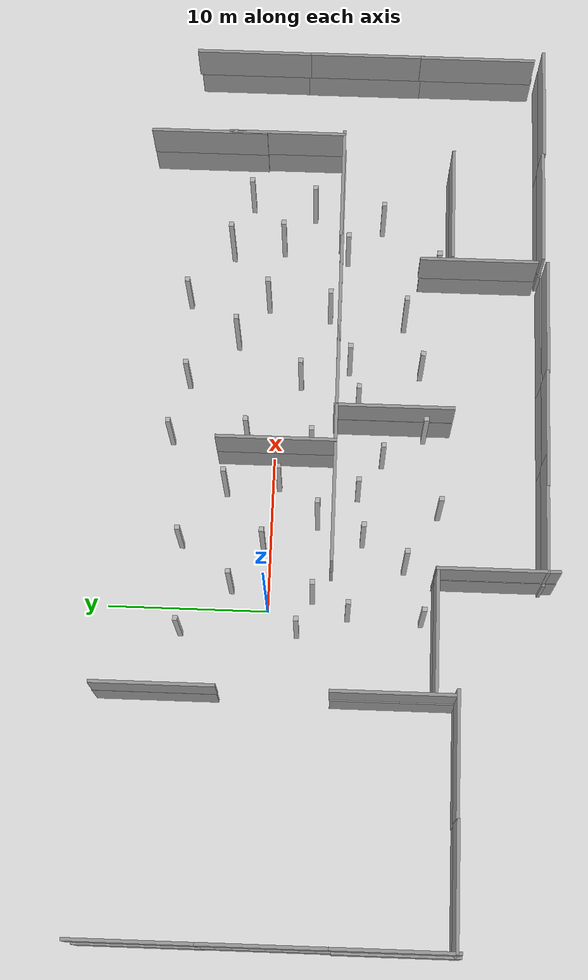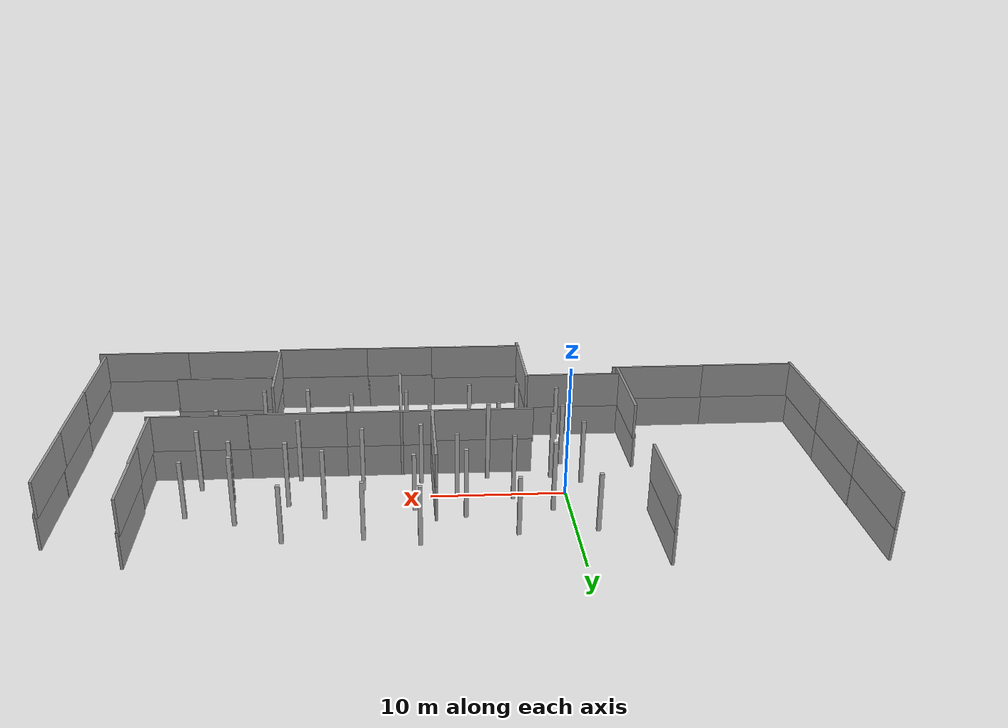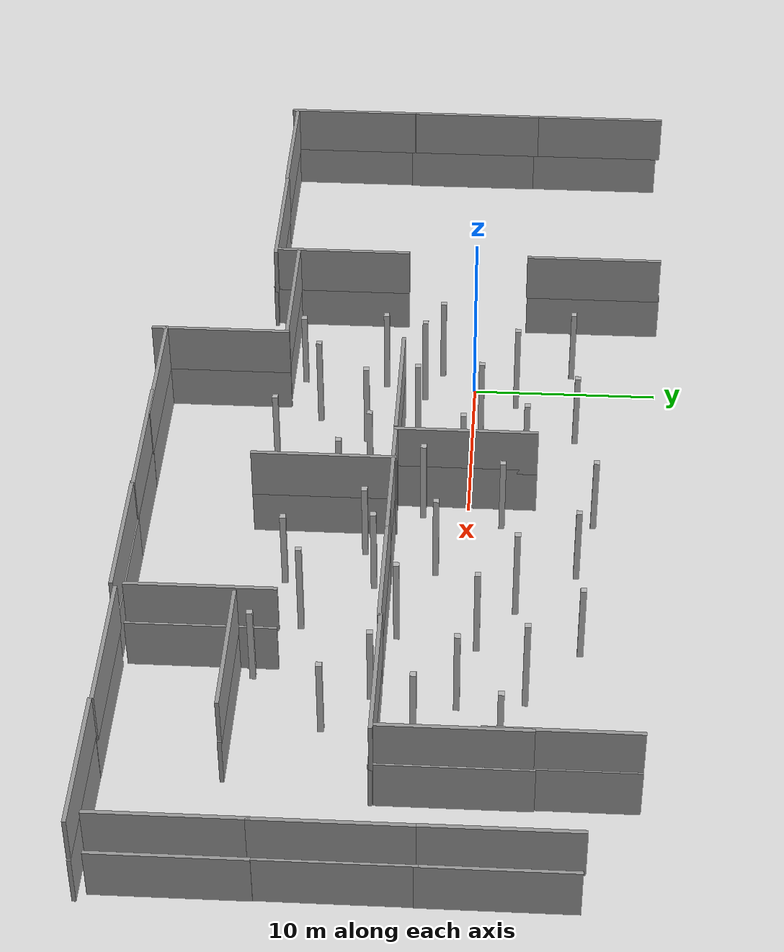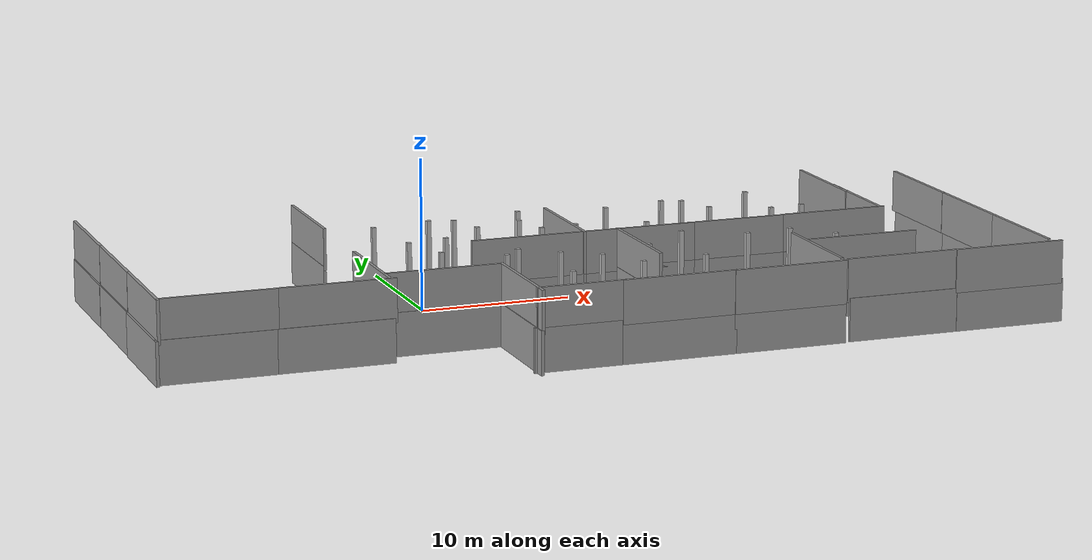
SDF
<sdf version="1.6">
 <world name="world">
  <model name="ground_plane">
   <static>1</static>
   <link name="link">
    <collision name="collision">
     <geometry><plane><normal>0 0 1</normal><size>100 100</size></plane></geometry>
     <surface><friction><ode><mu>100</mu><mu2>50</mu2></ode></friction></surface>
    </collision>
    <velocity_decay><linear>0</linear><angular>0</angular></velocity_decay>
   </link>
  </model>
  <model name="pillars">
   <pose>-3.82158 -2.82314 0 0 -0 0</pose>
   <static>1</static>
   <link name="body">
    <visual name="visual">
     <pose>0 0 -0.001 0 -0 0</pose>
     <geometry><mesh><uri>model://pillars/pillars4.dae</uri><scale>1 1 1</scale></mesh></geometry>
    </visual>
    <collision name="pillars">
     <pose>0 0 -0.001 0 -0 0</pose>
     <geometry><mesh><uri>model://pillars/pillars4.dae</uri><scale>1 1 1</scale></mesh></geometry>
    </collision>
    <velocity_decay><linear>0</linear><angular>0</angular></velocity_decay>
   </link>
  </model>
  <model name="grey_wall">
   <static>1</static>
   <link name="link">
    <pose>0 0 1.4 0 -0 0</pose>
    <collision name="collision"><geometry><box><size>7.5 0.2 2.8</size></box></geometry></collision>
    <visual name="visual">
     <cast_shadows>0</cast_shadows>
     <geometry><box><size>7.5 0.2 2.8</size></box></geometry>
     <material>
      <script>
       <uri>model://grey_wall/materials/scripts</uri>
       <uri>model://grey_wall/materials/textures</uri>
       <name>vrc/grey_wall</name>
      </script>
     </material>
    </visual>
   </link>
   <pose>13.5722 -3.83891 0 0 -0 0</pose>
  </model>
  <model name="grey_wall_clone">
   <static>1</static>
   <link name="link">
    <pose>0 0 1.4 0 -0 0</pose>
    <collision name="collision"><geometry><box><size>7.5 0.2 2.8</size></box></geometry></collision>
    <visual name="visual">
     <cast_shadows>0</cast_shadows>
     <geometry><box><size>7.5 0.2 2.8</size></box></geometry>
     <material>
      <script>
       <uri>model://grey_wall/materials/scripts</uri>
       <uri>model://grey_wall/materials/textures</uri>
       <name>vrc/grey_wall</name>
      </script>
     </material>
    </visual>
   </link>
   <pose>13.5722 -3.83891 2.5 0 -0 0</pose>
  </model>
  <model name="grey_wall_clone_clone">
   <static>1</static>
   <link name="link">
    <pose>0 0 1.4 0 -0 0</pose>
    <collision name="collision"><geometry><box><size>7.5 0.2 2.8</size></box></geometry></collision>
    <visual name="visual">
     <cast_shadows>0</cast_shadows>
     <geometry><box><size>7.5 0.2 2.8</size></box></geometry>
     <material>
      <script>
       <uri>model://grey_wall/materials/scripts</uri>
       <uri>model://grey_wall/materials/textures</uri>
       <name>vrc/grey_wall</name>
      </script>
     </material>
    </visual>
   </link>
   <pose>9.726 -0.192574 2.5 0 -0 1.57</pose>
  </model>
  <model name="grey_wall_clone_clone_clone">
   <static>1</static>
   <link name="link">
    <pose>0 0 1.4 0 -0 0</pose>
    <collision name="collision"><geometry><box><size>7.5 0.2 2.8</size></box></geometry></collision>
    <visual name="visual">
     <cast_shadows>0</cast_shadows>
     <geometry><box><size>7.5 0.2 2.8</size></box></geometry>
     <material>
      <script>
       <uri>model://grey_wall/materials/scripts</uri>
       <uri>model://grey_wall/materials/textures</uri>
       <name>vrc/grey_wall</name>
      </script>
     </material>
    </visual>
   </link>
   <pose>9.726 -0.192574 0 0 -0 1.57</pose>
  </model>
  <model name="grey_wall_clone_clone_clone_clone_clone">
   <static>1</static>
   <link name="link">
    <pose>0 0 1.4 0 -0 0</pose>
    <collision name="collision"><geometry><box><size>7.5 0.2 2.8</size></box></geometry></collision>
    <visual name="visual">
     <cast_shadows>0</cast_shadows>
     <geometry><box><size>7.5 0.2 2.8</size></box></geometry>
     <material>
      <script>
       <uri>model://grey_wall/materials/scripts</uri>
       <uri>model://grey_wall/materials/textures</uri>
       <name>vrc/grey_wall</name>
      </script>
     </material>
    </visual>
   </link>
   <pose>-5.6752 6.4961 0 0 -0 1.57</pose>
  </model>
  <model name="grey_wall_clone_clone_clone_0_clone">
   <static>1</static>
   <link name="link">
    <pose>0 0 1.4 0 -0 0</pose>
    <collision name="collision"><geometry><box><size>7.5 0.2 2.8</size></box></geometry></collision>
    <visual name="visual">
     <cast_shadows>0</cast_shadows>
     <geometry><box><size>7.5 0.2 2.8</size></box></geometry>
     <material>
      <script>
       <uri>model://grey_wall/materials/scripts</uri>
       <uri>model://grey_wall/materials/textures</uri>
       <name>vrc/grey_wall</name>
      </script>
     </material>
    </visual>
   </link>
   <pose>-5.66781 6.45311 2.5 0 -0 1.57</pose>
  </model>
  <model name="grey_wall_clone_0_clone_clone">
   <static>1</static>
   <link name="link">
    <pose>0 0 1.4 0 -0 0</pose>
    <collision name="collision"><geometry><box><size>7.5 0.2 2.8</size></box></geometry></collision>
    <visual name="visual">
     <cast_shadows>0</cast_shadows>
     <geometry><box><size>7.5 0.2 2.8</size></box></geometry>
     <material>
      <script>
       <uri>model://grey_wall/materials/scripts</uri>
       <uri>model://grey_wall/materials/textures</uri>
       <name>vrc/grey_wall</name>
      </script>
     </material>
    </visual>
   </link>
   <pose>5.8738 -3.84512 0 0 -0 0</pose>
  </model>
  <model name="grey_wall_clone_clone_1">
   <static>1</static>
   <link name="link">
    <pose>0 0 1.4 0 -0 0</pose>
    <collision name="collision"><geometry><box><size>7.5 0.2 2.8</size></box></geometry></collision>
    <visual name="visual">
     <cast_shadows>0</cast_shadows>
     <geometry><box><size>7.5 0.2 2.8</size></box></geometry>
     <material>
      <script>
       <uri>model://grey_wall/materials/scripts</uri>
       <uri>model://grey_wall/materials/textures</uri>
       <name>vrc/grey_wall</name>
      </script>
     </material>
    </visual>
   </link>
   <pose>5.81156 -3.84789 2.5 0 -0 0</pose>
  </model>
  <model name="grey_wall_clone_0_clone_clone_clone">
   <static>1</static>
   <link name="link">
    <pose>0 0 1.4 0 -0 0</pose>
    <collision name="collision"><geometry><box><size>7.5 0.2 2.8</size></box></geometry></collision>
    <visual name="visual">
     <cast_shadows>0</cast_shadows>
     <geometry><box><size>7.5 0.2 2.8</size></box></geometry>
     <material>
      <script>
       <uri>model://grey_wall/materials/scripts</uri>
       <uri>model://grey_wall/materials/textures</uri>
       <name>vrc/grey_wall</name>
      </script>
     </material>
    </visual>
   </link>
   <pose>-1.88628 -10.2551 0 0 -0 0</pose>
  </model>
  <model name="grey_wall_clone_clone_1_clone">
   <static>1</static>
   <link name="link">
    <pose>0 0 1.4 0 -0 0</pose>
    <collision name="collision"><geometry><box><size>7.5 0.2 2.8</size></box></geometry></collision>
    <visual name="visual">
     <cast_shadows>0</cast_shadows>
     <geometry><box><size>7.5 0.2 2.8</size></box></geometry>
     <material>
      <script>
       <uri>model://grey_wall/materials/scripts</uri>
       <uri>model://grey_wall/materials/textures</uri>
       <name>vrc/grey_wall</name>
      </script>
     </material>
    </visual>
   </link>
   <pose>-1.99118 -10.2312 2.5 0 -0 0</pose>
  </model>
  <model name="grey_wall_clone_clone_clone_clone_clone_0_clone_0">
   <static>1</static>
   <link name="link">
    <pose>0 0 1.4 0 -0 0</pose>
    <collision name="collision"><geometry><box><size>7.5 0.2 2.8</size></box></geometry></collision>
    <visual name="visual">
     <cast_shadows>0</cast_shadows>
     <geometry><box><size>7.5 0.2 2.8</size></box></geometry>
     <material>
      <script>
       <uri>model://grey_wall/materials/scripts</uri>
       <uri>model://grey_wall/materials/textures</uri>
       <name>vrc/grey_wall</name>
      </script>
     </material>
    </visual>
   </link>
   <pose>12.0107 -7.4078 0 0 -0 1.57</pose>
  </model>
  <model name="grey_wall_clone_clone_clone_0_clone_0_clone_0">
   <static>1</static>
   <link name="link">
    <pose>0 0 1.4 0 -0 0</pose>
    <collision name="collision"><geometry><box><size>7.5 0.2 2.8</size></box></geometry></collision>
    <visual name="visual">
     <cast_shadows>0</cast_shadows>
     <geometry><box><size>7.5 0.2 2.8</size></box></geometry>
     <material>
      <script>
       <uri>model://grey_wall/materials/scripts</uri>
       <uri>model://grey_wall/materials/textures</uri>
       <name>vrc/grey_wall</name>
      </script>
     </material>
    </visual>
   </link>
   <pose>12.0233 -7.4059 2.5 0 -0 1.57</pose>
  </model>
  <model name="grey_wall_clone_0_clone_clone_clone_0_clone">
   <static>1</static>
   <link name="link">
    <pose>0 0 1.4 0 -0 0</pose>
    <collision name="collision"><geometry><box><size>7.5 0.2 2.8</size></box></geometry></collision>
    <visual name="visual">
     <cast_shadows>0</cast_shadows>
     <geometry><box><size>7.5 0.2 2.8</size></box></geometry>
     <material>
      <script>
       <uri>model://grey_wall/materials/scripts</uri>
       <uri>model://grey_wall/materials/textures</uri>
       <name>vrc/grey_wall</name>
      </script>
     </material>
    </visual>
   </link>
   <pose>10.9652 -16.8254 0 0 -0 0</pose>
  </model>
  <model name="grey_wall_clone_clone_1_clone_clone_clone">
   <static>1</static>
   <link name="link">
    <pose>0 0 1.4 0 -0 0</pose>
    <collision name="collision"><geometry><box><size>7.5 0.2 2.8</size></box></geometry></collision>
    <visual name="visual">
     <cast_shadows>0</cast_shadows>
     <geometry><box><size>7.5 0.2 2.8</size></box></geometry>
     <material>
      <script>
       <uri>model://grey_wall/materials/scripts</uri>
       <uri>model://grey_wall/materials/textures</uri>
       <name>vrc/grey_wall</name>
      </script>
     </material>
    </visual>
   </link>
   <pose>10.9906 -16.8458 2.5 0 -0 0</pose>
  </model>
  <model name="grey_wall_clone_0_clone_clone_clone_0_clone_clone">
   <static>1</static>
   <link name="link">
    <pose>0 0 1.4 0 -0 0</pose>
    <collision name="collision"><geometry><box><size>7.5 0.2 2.8</size></box></geometry></collision>
    <visual name="visual">
     <cast_shadows>0</cast_shadows>
     <geometry><box><size>7.5 0.2 2.8</size></box></geometry>
     <material>
      <script>
       <uri>model://grey_wall/materials/scripts</uri>
       <uri>model://grey_wall/materials/textures</uri>
       <name>vrc/grey_wall</name>
      </script>
     </material>
    </visual>
   </link>
   <pose>18.339 -16.8254 0 0 -0 0</pose>
  </model>
  <model name="grey_wall_clone_clone_1_clone_clone_clone_clone">
   <static>1</static>
   <link name="link">
    <pose>0 0 1.4 0 -0 0</pose>
    <collision name="collision"><geometry><box><size>7.5 0.2 2.8</size></box></geometry></collision>
    <visual name="visual">
     <cast_shadows>0</cast_shadows>
     <geometry><box><size>7.5 0.2 2.8</size></box></geometry>
     <material>
      <script>
       <uri>model://grey_wall/materials/scripts</uri>
       <uri>model://grey_wall/materials/textures</uri>
       <name>vrc/grey_wall</name>
      </script>
     </material>
    </visual>
   </link>
   <pose>18.3322 -16.8956 2.5 0 -0 0</pose>
  </model>
  <model name="grey_wall_clone_clone_clone_clone_clone_0_clone_0_clone_0">
   <static>1</static>
   <link name="link">
    <pose>0 0 1.4 0 -0 0</pose>
    <collision name="collision"><geometry><box><size>7.5 0.2 2.8</size></box></geometry></collision>
    <visual name="visual">
     <cast_shadows>0</cast_shadows>
     <geometry><box><size>7.5 0.2 2.8</size></box></geometry>
     <material>
      <script>
       <uri>model://grey_wall/materials/scripts</uri>
       <uri>model://grey_wall/materials/textures</uri>
       <name>vrc/grey_wall</name>
      </script>
     </material>
    </visual>
   </link>
   <pose>22.181 -12.6644 0 0 -0 1.57</pose>
  </model>
  <model name="grey_wall_clone_clone_clone_0_clone_0_clone_0_clone_0">
   <static>1</static>
   <link name="link">
    <pose>0 0 1.4 0 -0 0</pose>
    <collision name="collision"><geometry><box><size>7.5 0.2 2.8</size></box></geometry></collision>
    <visual name="visual">
     <cast_shadows>0</cast_shadows>
     <geometry><box><size>7.5 0.2 2.8</size></box></geometry>
     <material>
      <script>
       <uri>model://grey_wall/materials/scripts</uri>
       <uri>model://grey_wall/materials/textures</uri>
       <name>vrc/grey_wall</name>
      </script>
     </material>
    </visual>
   </link>
   <pose>22.0458 -12.5728 2.5 0 -0 1.57</pose>
  </model>
  <model name="grey_wall_clone_1">
   <static>1</static>
   <link name="link">
    <pose>0 0 1.4 0 -0 0</pose>
    <collision name="collision"><geometry><box><size>7.5 0.2 2.8</size></box></geometry></collision>
    <visual name="visual">
     <cast_shadows>0</cast_shadows>
     <geometry><box><size>7.5 0.2 2.8</size></box></geometry>
     <material>
      <script>
       <uri>model://grey_wall/materials/scripts</uri>
       <uri>model://grey_wall/materials/textures</uri>
       <name>vrc/grey_wall</name>
      </script>
     </material>
    </visual>
   </link>
   <pose>19.9134 -3.83819 0 0 -0 0</pose>
  </model>
  <model name="grey_wall_clone_clone_2">
   <static>1</static>
   <link name="link">
    <pose>0 0 1.4 0 -0 0</pose>
    <collision name="collision"><geometry><box><size>7.5 0.2 2.8</size></box></geometry></collision>
    <visual name="visual">
     <cast_shadows>0</cast_shadows>
     <geometry><box><size>7.5 0.2 2.8</size></box></geometry>
     <material>
      <script>
       <uri>model://grey_wall/materials/scripts</uri>
       <uri>model://grey_wall/materials/textures</uri>
       <name>vrc/grey_wall</name>
      </script>
     </material>
    </visual>
   </link>
   <pose>19.8779 -3.83236 2.5 0 -0 0</pose>
  </model>
  <model name="grey_wall_clone_1_clone">
   <static>1</static>
   <link name="link">
    <pose>0 0 1.4 0 -0 0</pose>
    <collision name="collision"><geometry><box><size>7.5 0.2 2.8</size></box></geometry></collision>
    <visual name="visual">
     <cast_shadows>0</cast_shadows>
     <geometry><box><size>7.5 0.2 2.8</size></box></geometry>
     <material>
      <script>
       <uri>model://grey_wall/materials/scripts</uri>
       <uri>model://grey_wall/materials/textures</uri>
       <name>vrc/grey_wall</name>
      </script>
     </material>
    </visual>
   </link>
   <pose>26.1057 -10.8871 0 0 -0 0</pose>
  </model>
  <model name="grey_wall_clone_clone_2_clone">
   <static>1</static>
   <link name="link">
    <pose>0 0 1.4 0 -0 0</pose>
    <collision name="collision"><geometry><box><size>7.5 0.2 2.8</size></box></geometry></collision>
    <visual name="visual">
     <cast_shadows>0</cast_shadows>
     <geometry><box><size>7.5 0.2 2.8</size></box></geometry>
     <material>
      <script>
       <uri>model://grey_wall/materials/scripts</uri>
       <uri>model://grey_wall/materials/textures</uri>
       <name>vrc/grey_wall</name>
      </script>
     </material>
    </visual>
   </link>
   <pose>26.0114 -10.8846 2.5 0 -0 0</pose>
  </model>
  <model name="grey_wall_clone_0_clone_clone_clone_0_clone_clone_clone">
   <static>1</static>
   <link name="link">
    <pose>0 0 1.4 0 -0 0</pose>
    <collision name="collision"><geometry><box><size>7.5 0.2 2.8</size></box></geometry></collision>
    <visual name="visual">
     <cast_shadows>0</cast_shadows>
     <geometry><box><size>7.5 0.2 2.8</size></box></geometry>
     <material>
      <script>
       <uri>model://grey_wall/materials/scripts</uri>
       <uri>model://grey_wall/materials/textures</uri>
       <name>vrc/grey_wall</name>
      </script>
     </material>
    </visual>
   </link>
   <pose>26.1699 -16.7148 0 0 -0 0</pose>
  </model>
  <model name="grey_wall_clone_clone_1_clone_clone_clone_clone_clone">
   <static>1</static>
   <link name="link">
    <pose>0 0 1.4 0 -0 0</pose>
    <collision name="collision"><geometry><box><size>7.5 0.2 2.8</size></box></geometry></collision>
    <visual name="visual">
     <cast_shadows>0</cast_shadows>
     <geometry><box><size>7.5 0.2 2.8</size></box></geometry>
     <material>
      <script>
       <uri>model://grey_wall/materials/scripts</uri>
       <uri>model://grey_wall/materials/textures</uri>
       <name>vrc/grey_wall</name>
      </script>
     </material>
    </visual>
   </link>
   <pose>26.0239 -16.6483 2.5 0 -0 0</pose>
  </model>
  <model name="grey_wall_clone_0_clone_clone_clone_0_clone_clone_clone_clone">
   <static>1</static>
   <link name="link">
    <pose>0 0 1.4 0 -0 0</pose>
    <collision name="collision"><geometry><box><size>7.5 0.2 2.8</size></box></geometry></collision>
    <visual name="visual">
     <cast_shadows>0</cast_shadows>
     <geometry><box><size>7.5 0.2 2.8</size></box></geometry>
     <material>
      <script>
       <uri>model://grey_wall/materials/scripts</uri>
       <uri>model://grey_wall/materials/textures</uri>
       <name>vrc/grey_wall</name>
      </script>
     </material>
    </visual>
   </link>
   <pose>33.5484 -16.7279 0 0 -0 0</pose>
  </model>
  <model name="grey_wall_clone_clone_1_clone_clone_clone_clone_clone_clone">
   <static>1</static>
   <link name="link">
    <pose>0 0 1.4 0 -0 0</pose>
    <collision name="collision"><geometry><box><size>7.5 0.2 2.8</size></box></geometry></collision>
    <visual name="visual">
     <cast_shadows>0</cast_shadows>
     <geometry><box><size>7.5 0.2 2.8</size></box></geometry>
     <material>
      <script>
       <uri>model://grey_wall/materials/scripts</uri>
       <uri>model://grey_wall/materials/textures</uri>
       <name>vrc/grey_wall</name>
      </script>
     </material>
    </visual>
   </link>
   <pose>33.4635 -16.7332 2.5 0 -0 0</pose>
  </model>
  <model name="grey_wall_clone_clone_clone_clone_clone_0_clone_0_clone_0_clone">
   <static>1</static>
   <link name="link">
    <pose>0 0 1.4 0 -0 0</pose>
    <collision name="collision"><geometry><box><size>7.5 0.2 2.8</size></box></geometry></collision>
    <visual name="visual">
     <cast_shadows>0</cast_shadows>
     <geometry><box><size>7.5 0.2 2.8</size></box></geometry>
     <material>
      <script>
       <uri>model://grey_wall/materials/scripts</uri>
       <uri>model://grey_wall/materials/textures</uri>
       <name>vrc/grey_wall</name>
      </script>
     </material>
    </visual>
   </link>
   <pose>36.7704 -12.4742 0 0 -0 1.57</pose>
  </model>
  <model name="grey_wall_clone_clone_clone_0_clone_0_clone_0_clone_0_clone">
   <static>1</static>
   <link name="link">
    <pose>0 0 1.4 0 -0 0</pose>
    <collision name="collision"><geometry><box><size>7.5 0.2 2.8</size></box></geometry></collision>
    <visual name="visual">
     <cast_shadows>0</cast_shadows>
     <geometry><box><size>7.5 0.2 2.8</size></box></geometry>
     <material>
      <script>
       <uri>model://grey_wall/materials/scripts</uri>
       <uri>model://grey_wall/materials/textures</uri>
       <name>vrc/grey_wall</name>
      </script>
     </material>
    </visual>
   </link>
   <pose>36.5808 -12.3883 2.5 0 -0 1.57</pose>
  </model>
  <model name="grey_wall_clone_clone_clone_clone_clone_0_clone_0_clone_0_clone_0">
   <static>1</static>
   <link name="link">
    <pose>0 0 1.4 0 -0 0</pose>
    <collision name="collision"><geometry><box><size>7.5 0.2 2.8</size></box></geometry></collision>
    <visual name="visual">
     <cast_shadows>0</cast_shadows>
     <geometry><box><size>7.5 0.2 2.8</size></box></geometry>
     <material>
      <script>
       <uri>model://grey_wall/materials/scripts</uri>
       <uri>model://grey_wall/materials/textures</uri>
       <name>vrc/grey_wall</name>
      </script>
     </material>
    </visual>
   </link>
   <pose>36.7467 -5.01666 0 0 -0 1.57</pose>
  </model>
  <model name="grey_wall_clone_clone_clone_clone_clone_0_clone_0_clone_0_clone_1">
   <static>1</static>
   <link name="link">
    <pose>0 0 1.4 0 -0 0</pose>
    <collision name="collision"><geometry><box><size>7.5 0.2 2.8</size></box></geometry></collision>
    <visual name="visual">
     <cast_shadows>0</cast_shadows>
     <geometry><box><size>7.5 0.2 2.8</size></box></geometry>
     <material>
      <script>
       <uri>model://grey_wall/materials/scripts</uri>
       <uri>model://grey_wall/materials/textures</uri>
       <name>vrc/grey_wall</name>
      </script>
     </material>
    </visual>
   </link>
   <pose>36.7735 2.25472 0 0 -0 1.57</pose>
  </model>
  <model name="grey_wall_clone_clone_clone_0_clone_0_clone_0_clone_0_clone_clone">
   <static>1</static>
   <link name="link">
    <pose>0 0 1.4 0 -0 0</pose>
    <collision name="collision"><geometry><box><size>7.5 0.2 2.8</size></box></geometry></collision>
    <visual name="visual">
     <cast_shadows>0</cast_shadows>
     <geometry><box><size>7.5 0.2 2.8</size></box></geometry>
     <material>
      <script>
       <uri>model://grey_wall/materials/scripts</uri>
       <uri>model://grey_wall/materials/textures</uri>
       <name>vrc/grey_wall</name>
      </script>
     </material>
    </visual>
   </link>
   <pose>36.5981 -5.12794 2.5 0 -0 1.57</pose>
  </model>
  <model name="grey_wall_clone_clone_clone_0_clone_0_clone_0_clone_0_clone_clone_0">
   <static>1</static>
   <link name="link">
    <pose>0 0 1.4 0 -0 0</pose>
    <collision name="collision"><geometry><box><size>7.5 0.2 2.8</size></box></geometry></collision>
    <visual name="visual">
     <cast_shadows>0</cast_shadows>
     <geometry><box><size>7.5 0.2 2.8</size></box></geometry>
     <material>
      <script>
       <uri>model://grey_wall/materials/scripts</uri>
       <uri>model://grey_wall/materials/textures</uri>
       <name>vrc/grey_wall</name>
      </script>
     </material>
    </visual>
   </link>
   <pose>36.5932 2.35798 2.5 0 -0 1.57</pose>
  </model>
  <model name="grey_wall_clone_1_clone_0">
   <static>1</static>
   <link name="link">
    <pose>0 0 1.4 0 -0 0</pose>
    <collision name="collision"><geometry><box><size>7.5 0.2 2.8</size></box></geometry></collision>
    <visual name="visual">
     <cast_shadows>0</cast_shadows>
     <geometry><box><size>7.5 0.2 2.8</size></box></geometry>
     <material>
      <script>
       <uri>model://grey_wall/materials/scripts</uri>
       <uri>model://grey_wall/materials/textures</uri>
       <name>vrc/grey_wall</name>
      </script>
     </material>
    </visual>
   </link>
   <pose>27.1784 -3.8213 0 0 -0 0</pose>
  </model>
  <model name="grey_wall_clone_clone_2_clone_0">
   <static>1</static>
   <link name="link">
    <pose>0 0 1.4 0 -0 0</pose>
    <collision name="collision"><geometry><box><size>7.5 0.2 2.8</size></box></geometry></collision>
    <visual name="visual">
     <cast_shadows>0</cast_shadows>
     <geometry><box><size>7.5 0.2 2.8</size></box></geometry>
     <material>
      <script>
       <uri>model://grey_wall/materials/scripts</uri>
       <uri>model://grey_wall/materials/textures</uri>
       <name>vrc/grey_wall</name>
      </script>
     </material>
    </visual>
   </link>
   <pose>27.2363 -3.76144 2.5 0 -0 0</pose>
  </model>
  <model name="grey_wall_clone_clone_clone_clone_clone_0_clone_0_clone_0_clone_3">
   <static>1</static>
   <link name="link">
    <pose>0 0 1.4 0 -0 0</pose>
    <collision name="collision"><geometry><box><size>7.5 0.2 2.8</size></box></geometry></collision>
    <visual name="visual">
     <cast_shadows>0</cast_shadows>
     <geometry><box><size>7.5 0.2 2.8</size></box></geometry>
     <material>
      <script>
       <uri>model://grey_wall/materials/scripts</uri>
       <uri>model://grey_wall/materials/textures</uri>
       <name>vrc/grey_wall</name>
      </script>
     </material>
    </visual>
   </link>
   <pose>30.814 0.065366 0 0 -0 1.57</pose>
  </model>
  <model name="grey_wall_clone_clone_clone_clone_clone_0_clone_0_clone_0_clone_4">
   <static>1</static>
   <link name="link">
    <pose>0 0 1.4 0 -0 0</pose>
    <collision name="collision"><geometry><box><size>7.5 0.2 2.8</size></box></geometry></collision>
    <visual name="visual">
     <cast_shadows>0</cast_shadows>
     <geometry><box><size>7.5 0.2 2.8</size></box></geometry>
     <material>
      <script>
       <uri>model://grey_wall/materials/scripts</uri>
       <uri>model://grey_wall/materials/textures</uri>
       <name>vrc/grey_wall</name>
      </script>
     </material>
    </visual>
   </link>
   <pose>30.7277 5.00437 0 0 -0 1.57</pose>
  </model>
  <model name="grey_wall_clone_clone_clone_0_clone_0_clone_0_clone_1">
   <static>1</static>
   <link name="link">
    <pose>0 0 1.4 0 -0 0</pose>
    <collision name="collision"><geometry><box><size>7.5 0.2 2.8</size></box></geometry></collision>
    <visual name="visual">
     <cast_shadows>0</cast_shadows>
     <geometry><box><size>7.5 0.2 2.8</size></box></geometry>
     <material>
      <script>
       <uri>model://grey_wall/materials/scripts</uri>
       <uri>model://grey_wall/materials/textures</uri>
       <name>vrc/grey_wall</name>
      </script>
     </material>
    </visual>
   </link>
   <pose>30.7033 -0.035155 2.5 0 -0 1.57</pose>
  </model>
  <model name="grey_wall_clone_clone_clone_0_clone_0_clone_0_clone_2">
   <static>1</static>
   <link name="link">
    <pose>0 0 1.4 0 -0 0</pose>
    <collision name="collision"><geometry><box><size>7.5 0.2 2.8</size></box></geometry></collision>
    <visual name="visual">
     <cast_shadows>0</cast_shadows>
     <geometry><box><size>7.5 0.2 2.8</size></box></geometry>
     <material>
      <script>
       <uri>model://grey_wall/materials/scripts</uri>
       <uri>model://grey_wall/materials/textures</uri>
       <name>vrc/grey_wall</name>
      </script>
     </material>
    </visual>
   </link>
   <pose>30.6384 4.99865 2.5 0 -0 1.57</pose>
  </model>
  <model name="grey_wall_clone_clone_clone_clone_clone_clone">
   <static>1</static>
   <link name="link">
    <pose>0 0 1.4 0 -0 0</pose>
    <collision name="collision"><geometry><box><size>7.5 0.2 2.8</size></box></geometry></collision>
    <visual name="visual">
     <cast_shadows>0</cast_shadows>
     <geometry><box><size>7.5 0.2 2.8</size></box></geometry>
     <material>
      <script>
       <uri>model://grey_wall/materials/scripts</uri>
       <uri>model://grey_wall/materials/textures</uri>
       <name>vrc/grey_wall</name>
      </script>
     </material>
    </visual>
   </link>
   <pose>-20.332 6.62145 0 0 -0 1.57</pose>
  </model>
  <model name="grey_wall_clone_clone_clone_0_clone_clone">
   <static>1</static>
   <link name="link">
    <pose>0 0 1.4 0 -0 0</pose>
    <collision name="collision"><geometry><box><size>7.5 0.2 2.8</size></box></geometry></collision>
    <visual name="visual">
     <cast_shadows>0</cast_shadows>
     <geometry><box><size>7.5 0.2 2.8</size></box></geometry>
     <material>
      <script>
       <uri>model://grey_wall/materials/scripts</uri>
       <uri>model://grey_wall/materials/textures</uri>
       <name>vrc/grey_wall</name>
      </script>
     </material>
    </visual>
   </link>
   <pose>-20.2199 6.83363 2.5 0 -0 1.57</pose>
  </model>
  <model name="grey_wall_clone_clone_clone_0_clone_clone_0">
   <static>1</static>
   <link name="link">
    <pose>0 0 1.4 0 -0 0</pose>
    <collision name="collision"><geometry><box><size>7.5 0.2 2.8</size></box></geometry></collision>
    <visual name="visual">
     <cast_shadows>0</cast_shadows>
     <geometry><box><size>7.5 0.2 2.8</size></box></geometry>
     <material>
      <script>
       <uri>model://grey_wall/materials/scripts</uri>
       <uri>model://grey_wall/materials/textures</uri>
       <name>vrc/grey_wall</name>
      </script>
     </material>
    </visual>
   </link>
   <pose>-20.2201 -0.618483 2.5 0 -0 1.57</pose>
  </model>
  <model name="grey_wall_clone_clone_clone_0_clone_clone_1">
   <static>1</static>
   <link name="link">
    <pose>0 0 1.4 0 -0 0</pose>
    <collision name="collision"><geometry><box><size>7.5 0.2 2.8</size></box></geometry></collision>
    <visual name="visual">
     <cast_shadows>0</cast_shadows>
     <geometry><box><size>7.5 0.2 2.8</size></box></geometry>
     <material>
      <script>
       <uri>model://grey_wall/materials/scripts</uri>
       <uri>model://grey_wall/materials/textures</uri>
       <name>vrc/grey_wall</name>
      </script>
     </material>
    </visual>
   </link>
   <pose>-20.2205 -8.13033 2.5 0 -0 1.57</pose>
  </model>
  <model name="grey_wall_clone_clone_clone_clone_clone_clone_0">
   <static>1</static>
   <link name="link">
    <pose>0 0 1.4 0 -0 0</pose>
    <collision name="collision"><geometry><box><size>7.5 0.2 2.8</size></box></geometry></collision>
    <visual name="visual">
     <cast_shadows>0</cast_shadows>
     <geometry><box><size>7.5 0.2 2.8</size></box></geometry>
     <material>
      <script>
       <uri>model://grey_wall/materials/scripts</uri>
       <uri>model://grey_wall/materials/textures</uri>
       <name>vrc/grey_wall</name>
      </script>
     </material>
    </visual>
   </link>
   <pose>-20.3209 -0.845609 0 0 -0 1.57</pose>
  </model>
  <model name="grey_wall_clone_clone_clone_clone_clone_clone_1">
   <static>1</static>
   <link name="link">
    <pose>0 0 1.4 0 -0 0</pose>
    <collision name="collision"><geometry><box><size>7.5 0.2 2.8</size></box></geometry></collision>
    <visual name="visual">
     <cast_shadows>0</cast_shadows>
     <geometry><box><size>7.5 0.2 2.8</size></box></geometry>
     <material>
      <script>
       <uri>model://grey_wall/materials/scripts</uri>
       <uri>model://grey_wall/materials/textures</uri>
       <name>vrc/grey_wall</name>
      </script>
     </material>
    </visual>
   </link>
   <pose>-20.3764 -8.29871 0 0 -0 1.57</pose>
  </model>
  <model name="grey_wall_clone_0_clone_clone_0_clone_clone">
   <static>1</static>
   <link name="link">
    <pose>0 0 1.4 0 -0 0</pose>
    <collision name="collision"><geometry><box><size>7.5 0.2 2.8</size></box></geometry></collision>
    <visual name="visual">
     <cast_shadows>0</cast_shadows>
     <geometry><box><size>7.5 0.2 2.8</size></box></geometry>
     <material>
      <script>
       <uri>model://grey_wall/materials/scripts</uri>
       <uri>model://grey_wall/materials/textures</uri>
       <name>vrc/grey_wall</name>
      </script>
     </material>
    </visual>
   </link>
   <pose>-16.6727 -11.6348 0 0 -0 0</pose>
  </model>
  <model name="grey_wall_clone_0_clone_clone_0_clone_clone_0">
   <static>1</static>
   <link name="link">
    <pose>0 0 1.4 0 -0 0</pose>
    <collision name="collision"><geometry><box><size>7.5 0.2 2.8</size></box></geometry></collision>
    <visual name="visual">
     <cast_shadows>0</cast_shadows>
     <geometry><box><size>7.5 0.2 2.8</size></box></geometry>
     <material>
      <script>
       <uri>model://grey_wall/materials/scripts</uri>
       <uri>model://grey_wall/materials/textures</uri>
       <name>vrc/grey_wall</name>
      </script>
     </material>
    </visual>
   </link>
   <pose>-9.24089 -11.6068 0 0 -0 0</pose>
  </model>
  <model name="grey_wall_clone_clone_0_clone_clone_clone_clone_clone">
   <static>1</static>
   <link name="link">
    <pose>0 0 1.4 0 -0 0</pose>
    <collision name="collision"><geometry><box><size>7.5 0.2 2.8</size></box></geometry></collision>
    <visual name="visual">
     <cast_shadows>0</cast_shadows>
     <geometry><box><size>7.5 0.2 2.8</size></box></geometry>
     <material>
      <script>
       <uri>model://grey_wall/materials/scripts</uri>
       <uri>model://grey_wall/materials/textures</uri>
       <name>vrc/grey_wall</name>
      </script>
     </material>
    </visual>
   </link>
   <pose>-16.5504 -11.5737 2.5 0 -0 0</pose>
  </model>
  <model name="grey_wall_clone_clone_0_clone_clone_clone_clone_clone_0">
   <static>1</static>
   <link name="link">
    <pose>0 0 1.4 0 -0 0</pose>
    <collision name="collision"><geometry><box><size>7.5 0.2 2.8</size></box></geometry></collision>
    <visual name="visual">
     <cast_shadows>0</cast_shadows>
     <geometry><box><size>7.5 0.2 2.8</size></box></geometry>
     <material>
      <script>
       <uri>model://grey_wall/materials/scripts</uri>
       <uri>model://grey_wall/materials/textures</uri>
       <name>vrc/grey_wall</name>
      </script>
     </material>
    </visual>
   </link>
   <pose>-9.11574 -11.5319 2.5 0 -0 0</pose>
  </model>
  <model name="grey_wall_clone_clone_clone_clone_clone_0_clone_clone">
   <static>1</static>
   <link name="link">
    <pose>0 0 1.4 0 -0 0</pose>
    <collision name="collision"><geometry><box><size>7.5 0.2 2.8</size></box></geometry></collision>
    <visual name="visual">
     <cast_shadows>0</cast_shadows>
     <geometry><box><size>7.5 0.2 2.8</size></box></geometry>
     <material>
      <script>
       <uri>model://grey_wall/materials/scripts</uri>
       <uri>model://grey_wall/materials/textures</uri>
       <name>vrc/grey_wall</name>
      </script>
     </material>
    </visual>
   </link>
   <pose>-5.82667 -7.74217 0 0 -0 1.57</pose>
  </model>
  <model name="grey_wall_clone_clone_clone_0_clone_0_clone_clone">
   <static>1</static>
   <link name="link">
    <pose>0 0 1.4 0 -0 0</pose>
    <collision name="collision"><geometry><box><size>7.5 0.2 2.8</size></box></geometry></collision>
    <visual name="visual">
     <cast_shadows>0</cast_shadows>
     <geometry><box><size>7.5 0.2 2.8</size></box></geometry>
     <material>
      <script>
       <uri>model://grey_wall/materials/scripts</uri>
       <uri>model://grey_wall/materials/textures</uri>
       <name>vrc/grey_wall</name>
      </script>
     </material>
    </visual>
   </link>
   <pose>-5.75023 -7.70151 2.5 0 -0 1.57</pose>
  </model>
  <model name="grey_wall_clone_clone_clone_clone_clone_0_clone_0_clone_clone">
   <static>1</static>
   <link name="link">
    <pose>0 0 1.4 0 -0 0</pose>
    <collision name="collision"><geometry><box><size>7.5 0.2 2.8</size></box></geometry></collision>
    <visual name="visual">
     <cast_shadows>0</cast_shadows>
     <geometry><box><size>7.5 0.2 2.8</size></box></geometry>
     <material>
      <script>
       <uri>model://grey_wall/materials/scripts</uri>
       <uri>model://grey_wall/materials/textures</uri>
       <name>vrc/grey_wall</name>
      </script>
     </material>
    </visual>
   </link>
   <pose>1.81162 -13.8472 0 0 -0 1.57</pose>
  </model>
  <model name="grey_wall_clone_clone_clone_0_clone_0_clone_0_clone_clone">
   <static>1</static>
   <link name="link">
    <pose>0 0 1.4 0 -0 0</pose>
    <collision name="collision"><geometry><box><size>7.5 0.2 2.8</size></box></geometry></collision>
    <visual name="visual">
     <cast_shadows>0</cast_shadows>
     <geometry><box><size>7.5 0.2 2.8</size></box></geometry>
     <material>
      <script>
       <uri>model://grey_wall/materials/scripts</uri>
       <uri>model://grey_wall/materials/textures</uri>
       <name>vrc/grey_wall</name>
      </script>
     </material>
    </visual>
   </link>
   <pose>1.85783 -13.8424 2.5 0 -0 1.57</pose>
  </model>
  <model name="grey_wall_clone_0_clone_clone_clone_0_clone_clone_0">
   <static>1</static>
   <link name="link">
    <pose>0 0 1.4 0 -0 0</pose>
    <collision name="collision"><geometry><box><size>7.5 0.2 2.8</size></box></geometry></collision>
    <visual name="visual">
     <cast_shadows>0</cast_shadows>
     <geometry><box><size>7.5 0.2 2.8</size></box></geometry>
     <material>
      <script>
       <uri>model://grey_wall/materials/scripts</uri>
       <uri>model://grey_wall/materials/textures</uri>
       <name>vrc/grey_wall</name>
      </script>
     </material>
    </visual>
   </link>
   <pose>5.28985 -16.8182 0 0 -0 0</pose>
  </model>
  <model name="grey_wall_clone_clone_1_clone_clone_clone_clone_0">
   <static>1</static>
   <link name="link">
    <pose>0 0 1.4 0 -0 0</pose>
    <collision name="collision"><geometry><box><size>7.5 0.2 2.8</size></box></geometry></collision>
    <visual name="visual">
     <cast_shadows>0</cast_shadows>
     <geometry><box><size>7.5 0.2 2.8</size></box></geometry>
     <material>
      <script>
       <uri>model://grey_wall/materials/scripts</uri>
       <uri>model://grey_wall/materials/textures</uri>
       <name>vrc/grey_wall</name>
      </script>
     </material>
    </visual>
   </link>
   <pose>5.47771 -16.8109 2.5 0 -0 0</pose>
  </model>
 </world>
</sdf>
